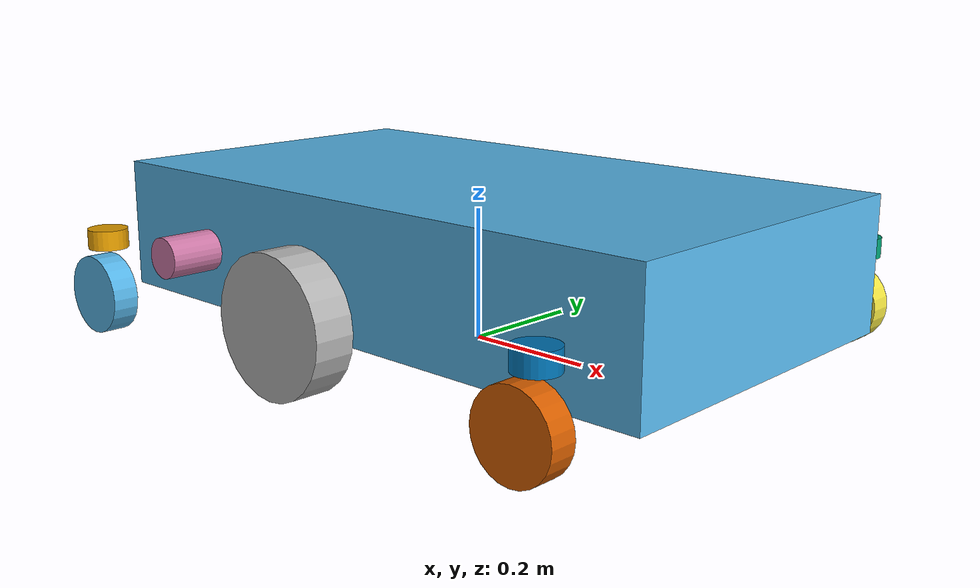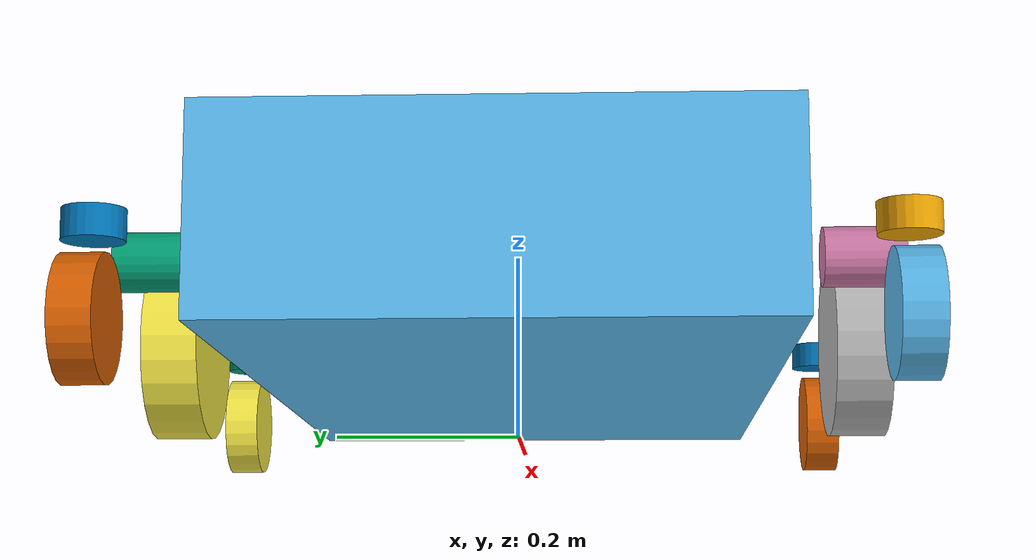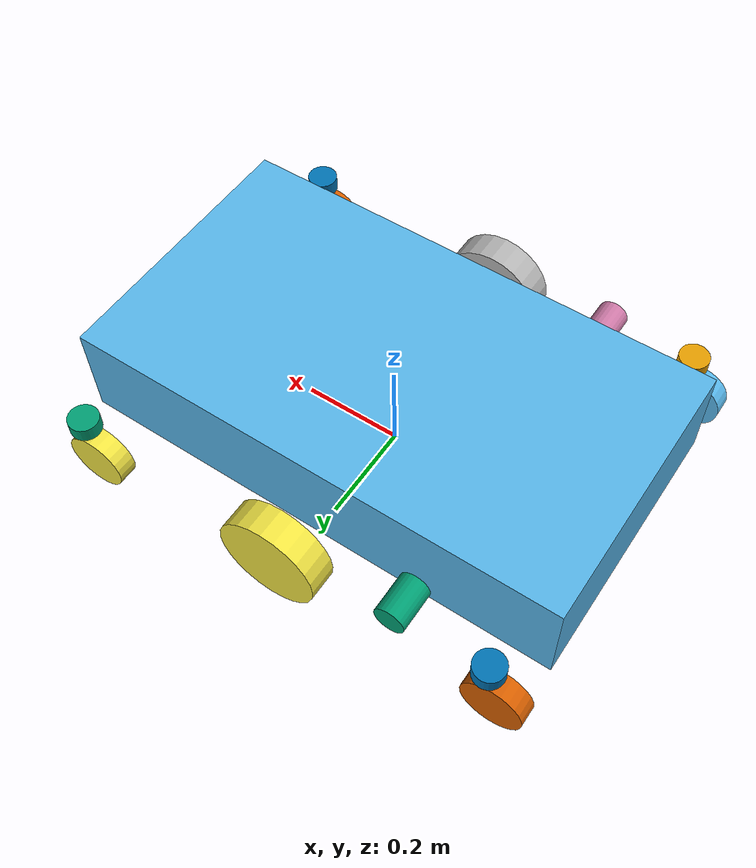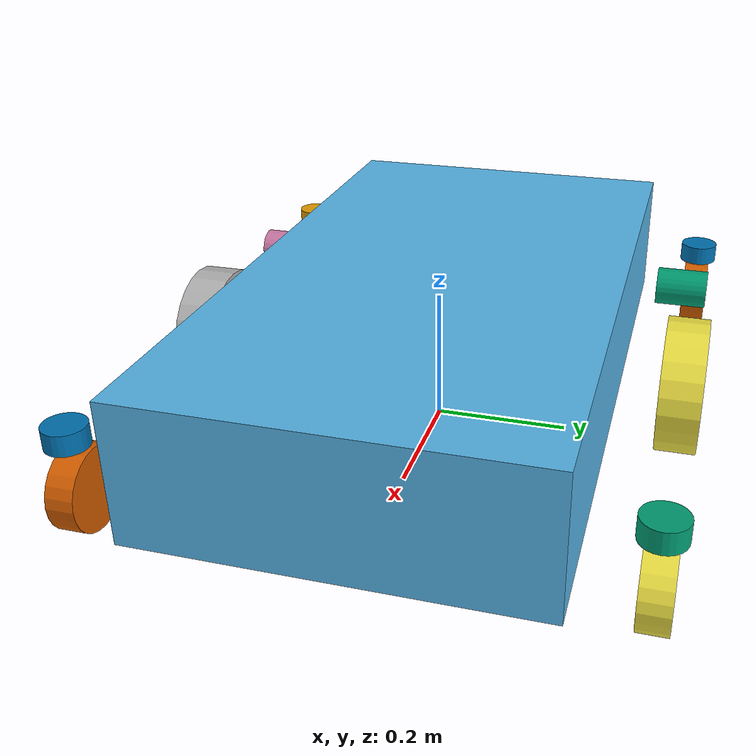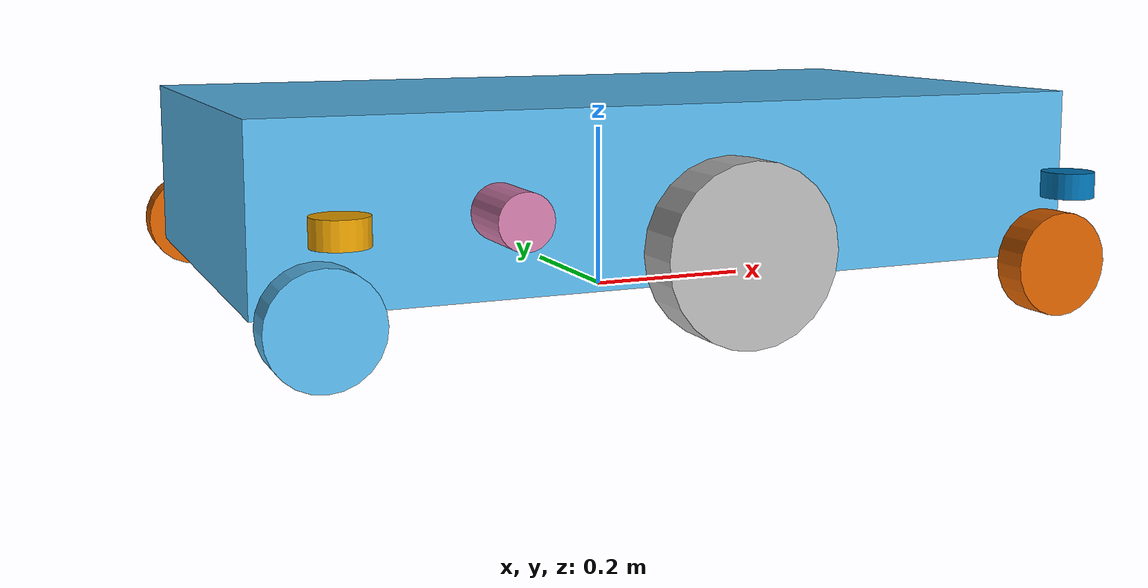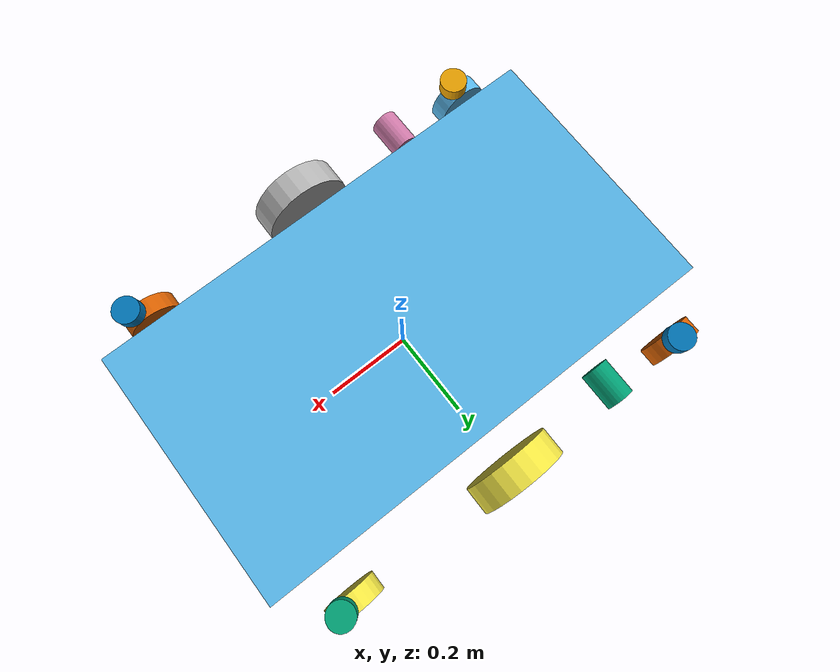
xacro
<?xml version="1.0" ?>
<robot name="thirabot" xmlns:xacro="http://www.ros.org/wiki/xacro">

    <xacro:include filename="$(find bogie_mobile_robot_description)/urdf/gazebo.urdf.xacro"/>
    <xacro:include filename="$(find bogie_mobile_robot_description)/urdf/inertia_macro.urdf.xacro"/>
    <xacro:include filename="$(find bogie_mobile_robot_description)/urdf/insert_transmission.urdf.xacro"/>

    <xacro:property name="main_wheel_diameter" value="0.2"/>
    <xacro:property name="caster_wheel_diameter" value="0.12"/>
    <xacro:property name="caster_wheel_length" value="0.03"/>

    <link name="base_footprint"/>
    <link name="base_link">
        <visual>
            <origin xyz="0 0 0" rpy="0 0 0"/>
            <geometry>
                <box size="1.0 0.55 0.20"/>
            </geometry>
        </visual>
        <collision>
            <origin xyz="0 0 0" rpy="0 0 0"/>
            <geometry>
                <box size="1.0 0.55 0.20"/>
            </geometry>
        </collision>
        <inertial>
            <mass value="60.0"/>
            <origin xyz="0 0 0" rpy="0 0 0"/>
            <xacro:box_inertia m="60.0" x="1.0" y="0.55" z="0.20"/>
        </inertial>
    </link>

    <joint name="base_footprint_fixed" type="fixed">
        <parent link="base_footprint"/>
        <child link="base_link"/>
        <origin xyz="0 0 0.15" rpy="0 0 0"/>
    </joint>

    <xacro:macro name="bogie_wheel" params="prefix dir">
        <link name="${prefix}_bogie_suspension">
            <visual>
                <origin xyz="0 ${-dir*0.01} 0" rpy="${pi/2} 0 0"/>
                <geometry>
                    <cylinder radius="0.03" length="0.08"/>
                </geometry>
            </visual>
            <collision>
                <origin xyz="0 ${-dir*0.01} 0" rpy="${pi/2} 0 0"/>
                <geometry>
                    <cylinder radius="0.03" length="0.08"/>
                </geometry>
            </collision>
            <inertial>
                <mass value="1.0"/>
                <origin xyz="0 ${-dir*0.01} 0" rpy="${pi/2} 0 0"/>
                <inertia ixx="1.0" ixy="0.0" ixz="0.0" iyy="1.0" iyz="0.0" izz="1.0"/>
            </inertial>
        </link>

        <joint name="${prefix}_bogie_suspension_joint" type="continuous">
            <parent link="base_link"/>
            <child link="${prefix}_bogie_suspension"/>
            <origin xyz="-0.25 ${dir*0.36} 0" rpy="0 0 0"/>
            <axis xyz="0 1 0"/>
        </joint>

        <link name="${prefix}_wheel">
            <visual>
                <origin xyz="0 0 0" rpy="${pi/2} 0 0"/>
                <geometry>
                    <cylinder radius="0.1" length="0.06"/>
                </geometry>
            </visual>
            <collision>
                <origin xyz="0 0 0" rpy="${pi/2} 0 0"/>
                <geometry>
                    <cylinder radius="0.1" length="0.06"/>
                </geometry>
            </collision>
            <inertial>
                <mass value="2.0"/>
                <origin xyz="0 0 0" rpy="${pi/2} 0 0"/>
                <xacro:cylinder_inertia m="2.0" r="0.1" h="0.06"/>
            </inertial>
        </link>

        <joint name="${prefix}_wheel_joint" type="continuous">
            <parent link="${prefix}_bogie_suspension"/>
            <child link="${prefix}_wheel"/>
            <origin xyz="0.25 ${dir*0.01} -0.05" rpy="0 0 0"/>
            <axis xyz="0 1 0"/>
            <limit effort="1000000" velocity="20.0"/>
        </joint>
        <xacro:insert_velocity_transmission name="${prefix}_wheel_joint"/>

        <link name="${prefix}_rear_caster_rotate">
            <visual>
                <origin xyz="0 0 0" rpy="0 0 0"/>
                <geometry>
                    <cylinder radius="0.03" length="0.03"/>
                </geometry>
            </visual>
            <collision>
                <origin xyz="0 0 0" rpy="0 0 0"/>
                <geometry>
                    <cylinder radius="0.03" length="0.03"/>
                </geometry>
            </collision>
            <inertial>
                <mass value="0.1"/>
                <origin xyz="0 0 0" rpy="0 0 0"/>
                <xacro:cylinder_inertia m="0.1" r="0.03" h="0.03"/>
            </inertial>
        </link>

        <joint name="${prefix}_rear_caster_rotate_joint" type="continuous">
            <parent link="${prefix}_bogie_suspension"/>
            <child link="${prefix}_rear_caster_rotate"/>
            <origin xyz="-0.18 ${dir*0.01} 0" rpy="0 0 0"/>
            <axis xyz="0 0 1"/>
        </joint>

        <link name="${prefix}_rear_caster_wheel">
            <visual>
                <origin xyz="0 0 0" rpy="${pi/2} 0 0"/>
                <geometry>
                    <cylinder radius="0.06" length="0.04"/>
                </geometry>
            </visual>
            <collision>
                <origin xyz="0 0 0" rpy="${pi/2} 0 0"/>
                <geometry>
                    <cylinder radius="0.06" length="0.04"/>
                </geometry>
            </collision>
            <inertial>
                <mass value="0.1"/>
                <origin xyz="0 0 0" rpy="${pi/2} 0 0"/>
                <xacro:cylinder_inertia m="0.1" r="0.06" h="0.04"/>
            </inertial>
        </link>

        <joint name="${prefix}_rear_caster_wheel_joint" type="continuous">
            <parent link="${prefix}_rear_caster_rotate"/>
            <child link="${prefix}_rear_caster_wheel"/>
            <origin xyz="-0.02 0 -0.09" rpy="0 0 0"/>
            <axis xyz="0 1 0"/>
            <limit effort="1000000" velocity="20.0"/>
        </joint>
    </xacro:macro>

    <xacro:bogie_wheel prefix="l" dir="1"/>
    <xacro:bogie_wheel prefix="r" dir="-1"/>

    <xacro:macro name="front_caster_wheel" params="prefix dir">
        <link name="${prefix}_front_caster_rotate">
            <visual>
                <origin xyz="0 0 0" rpy="0 0 0"/>
                <geometry>
                    <cylinder radius="0.03" length="0.03"/>
                </geometry>
            </visual>
            <collision>
                <origin xyz="0 0 0" rpy="0 0 0"/>
                <geometry>
                    <cylinder radius="0.03" length="0.03"/>
                </geometry>
            </collision>
            <inertial>
                <mass value="0.1"/>
                <origin xyz="0 0 0" rpy="0 0 0"/>
                <xacro:cylinder_inertia m="0.1" r="0.03" h="0.03"/>
            </inertial>
        </link>

        <joint name="${prefix}_front_caster_rotate_joint" type="continuous">
            <parent link="base_link"/>
            <child link="${prefix}_front_caster_rotate"/>
            <origin xyz="0.43 ${dir*0.37} 0" rpy="0 0 0"/>
            <axis xyz="0 0 1"/>
        </joint>

        <link name="${prefix}_front_caster_wheel">
            <visual>
                <origin xyz="0 0 0" rpy="${pi/2} 0 0"/>
                <geometry>
                    <cylinder radius="0.06" length="0.04"/>
                </geometry>
            </visual>
            <collision>
                <origin xyz="0 0 0" rpy="${pi/2} 0 0"/>
                <geometry>
                    <cylinder radius="0.06" length="0.04"/>
                </geometry>
            </collision>
            <inertial>
                <mass value="0.1"/>
                <origin xyz="0 0 0" rpy="${pi/2} 0 0"/>
                <xacro:cylinder_inertia m="0.1" r="0.06" h="0.04"/>
            </inertial>
        </link>

        <joint name="${prefix}_front_caster_wheel_joint" type="continuous">
            <parent link="${prefix}_front_caster_rotate"/>
            <child link="${prefix}_front_caster_wheel"/>
            <origin xyz="-0.02 0 -0.09" rpy="0 0 0"/>
            <axis xyz="0 1 0"/>
        </joint>
    </xacro:macro>

    <xacro:front_caster_wheel prefix="l" dir="1"/>
    <xacro:front_caster_wheel prefix="r" dir="-1"/>
</robot>
